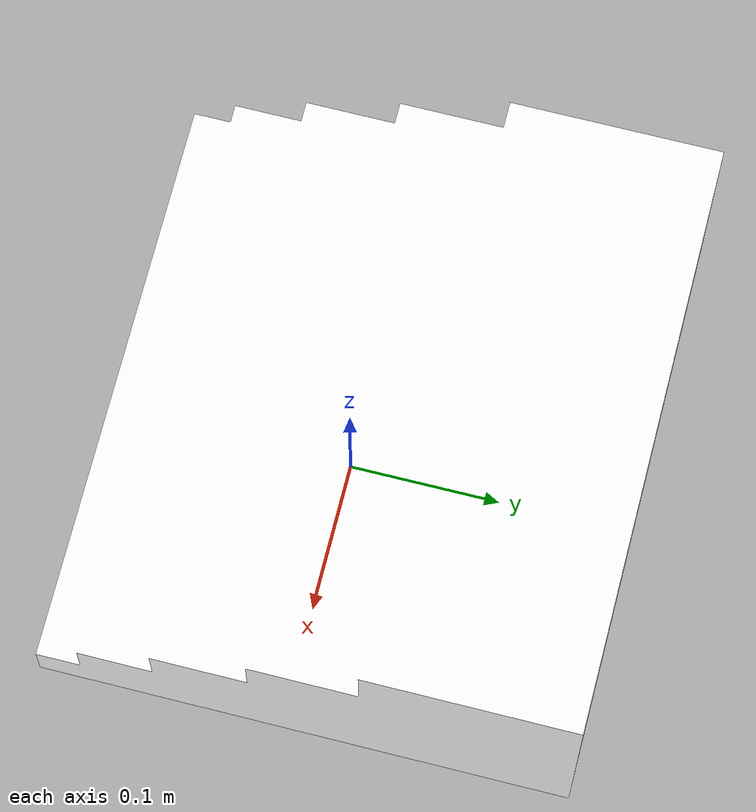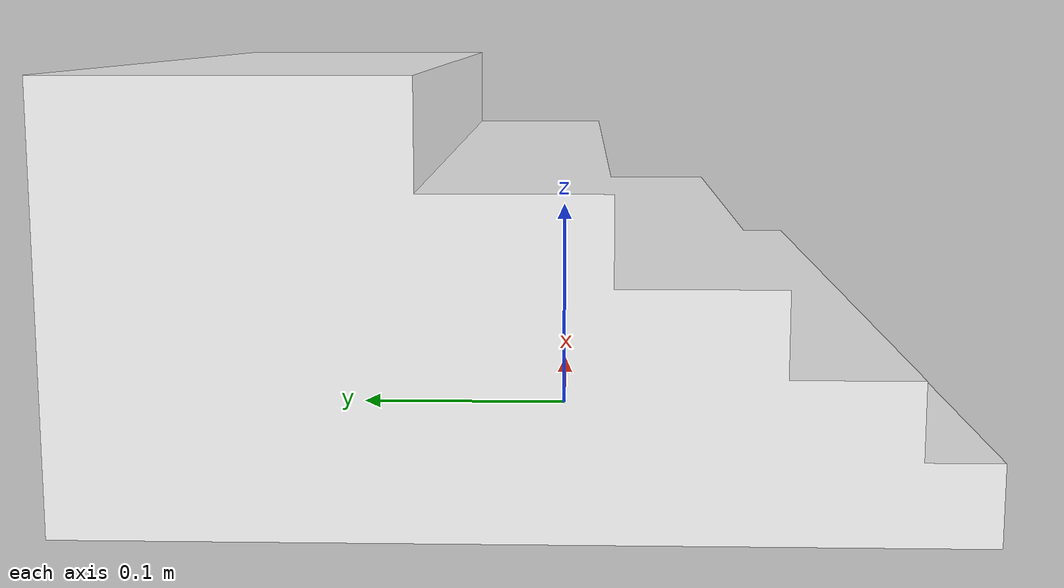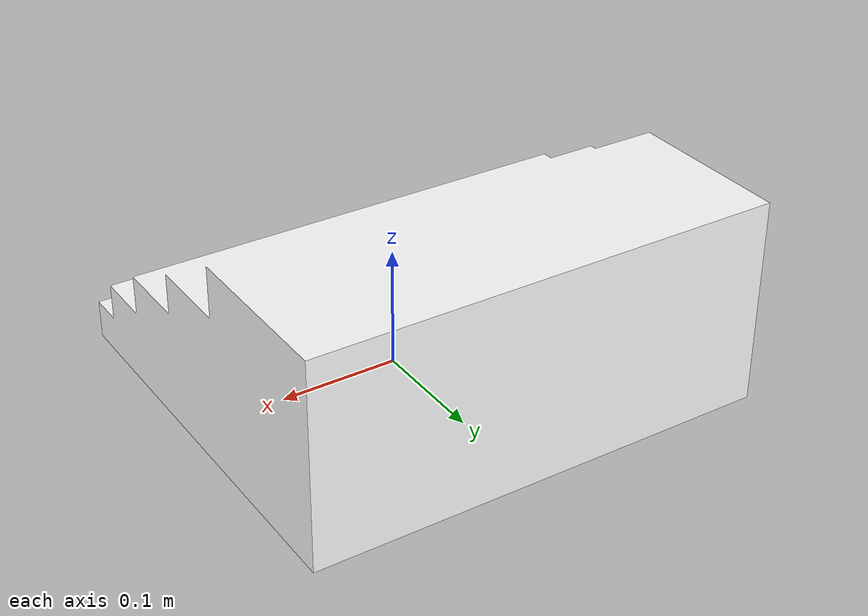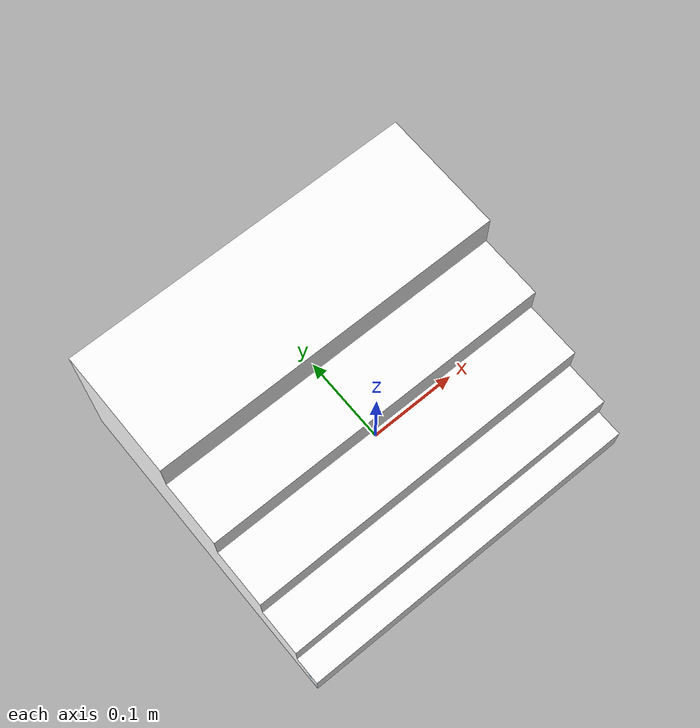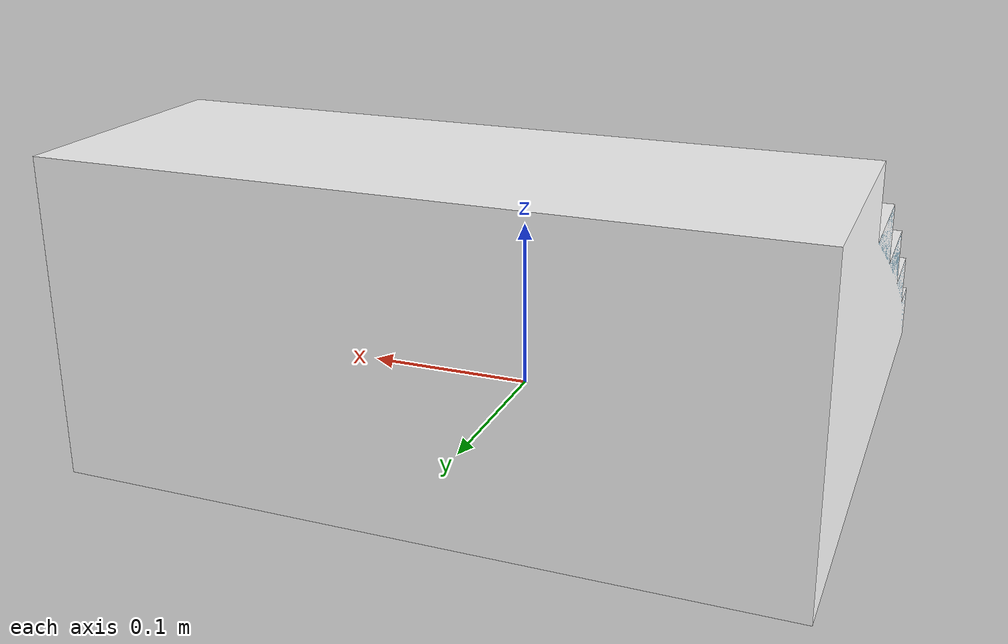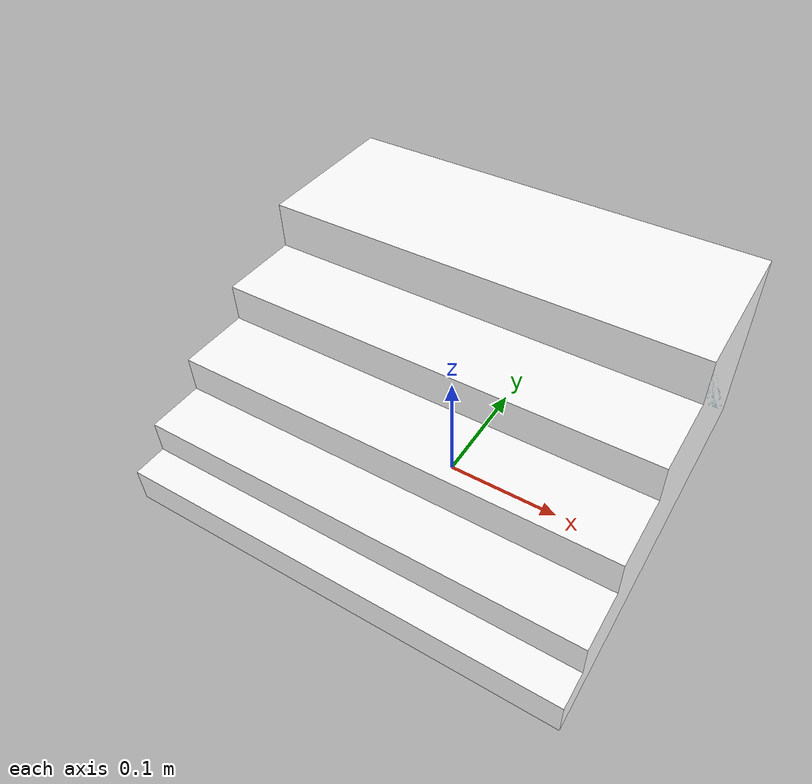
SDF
<?xml version="1.0" ?>
<sdf version="1.5">
  <model name="escada">
    <link name="link">
      <collision name="collision">
        <geometry>
          <mesh>
            <scale>0.24 0.24 0.24</scale>
            <uri>model://escada/meshes/escada.stl</uri>
          </mesh>
        </geometry>
      </collision>
      <visual name="visual">
        <geometry>
          <mesh>
            <scale>0.24 0.24 0.24</scale>
            <uri>model://escada/meshes/escada.dae</uri>
          </mesh>
        </geometry>
      </visual>
    </link>
  </model>
</sdf>
